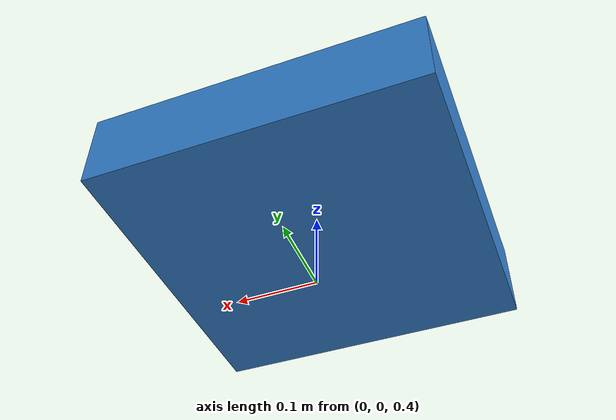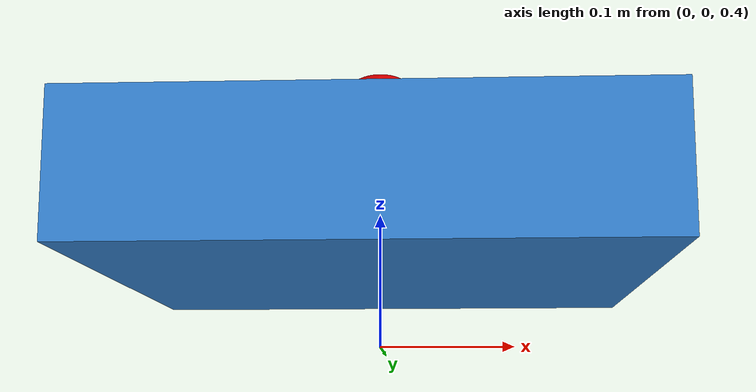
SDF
<?xml version="1.0"?>
<sdf version="1.6">
  <model name="simple_drone">
    <pose>0 0 0.5 0 0 0</pose>

    <!-- Main body -->
    <link name="base_link">
      <inertial>
        <mass>1.5</mass>
        <inertia>
          <ixx>0.0347563</ixx>
          <iyy>0.0458929</iyy>
          <izz>0.0977</izz>
          <ixy>0</ixy>
          <ixz>0</ixz>
          <iyz>0</iyz>
        </inertia>
      </inertial>

      <!-- Visual -->
      <visual name="visual">
        <geometry>
          <box>
            <size>0.4 0.4 0.1</size>
          </box>
        </geometry>
        <material>
          <ambient>0.2 0.5 0.8 1</ambient>
          <diffuse>0.2 0.5 0.8 1</diffuse>
        </material>
      </visual>

      <!-- Collision -->
      <collision name="collision">
        <geometry>
          <box>
            <size>0.4 0.4 0.1</size>
          </box>
        </geometry>
        <surface>
          <friction>
            <ode>
              <mu>0.1</mu>
              <mu2>0.1</mu2>
            </ode>
          </friction>
        </surface>
      </collision>

      <!-- Center marker (visual aid) -->
      <visual name="center_marker">
        <pose>0 0 0.06 0 0 0</pose>
        <geometry>
          <sphere>
            <radius>0.05</radius>
          </sphere>
        </geometry>
        <material>
          <ambient>1 0 0 1</ambient>
          <diffuse>1 0 0 1</diffuse>
        </material>
      </visual>
    </link>

    <!-- Plugin will be added in world file -->
  </model>
</sdf>
